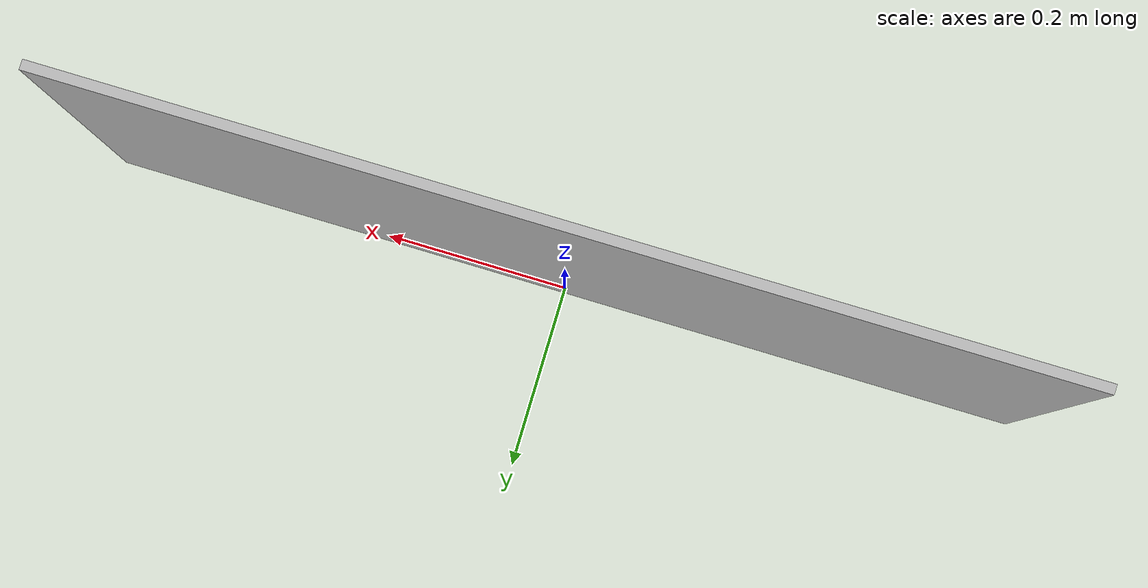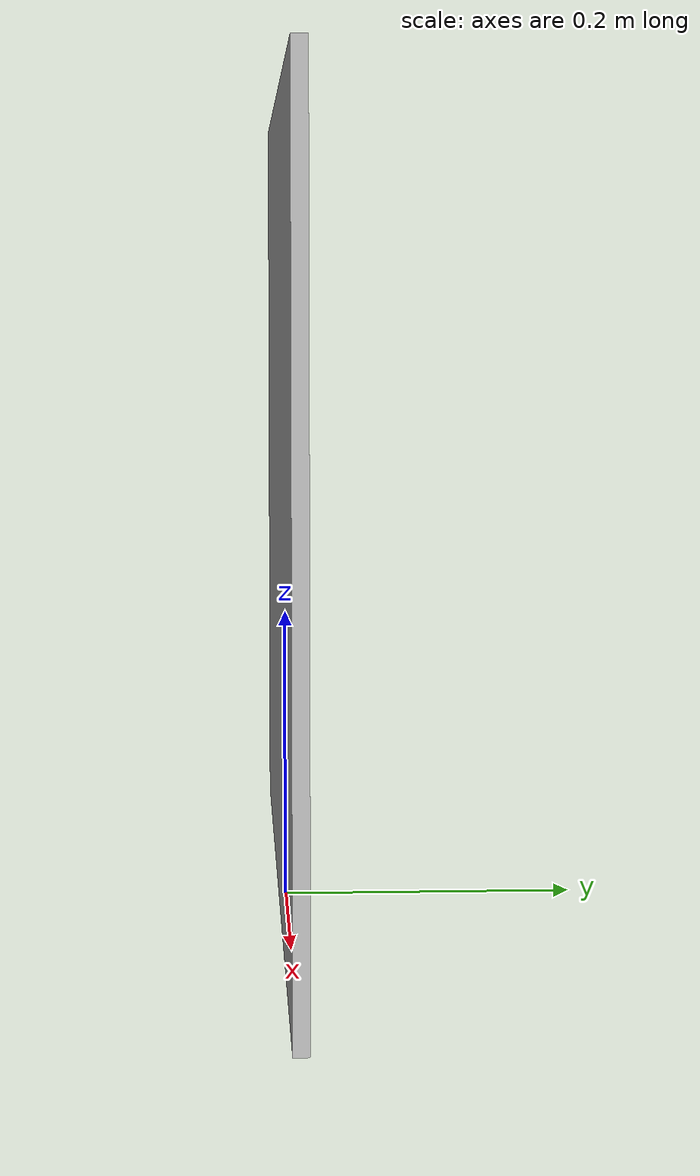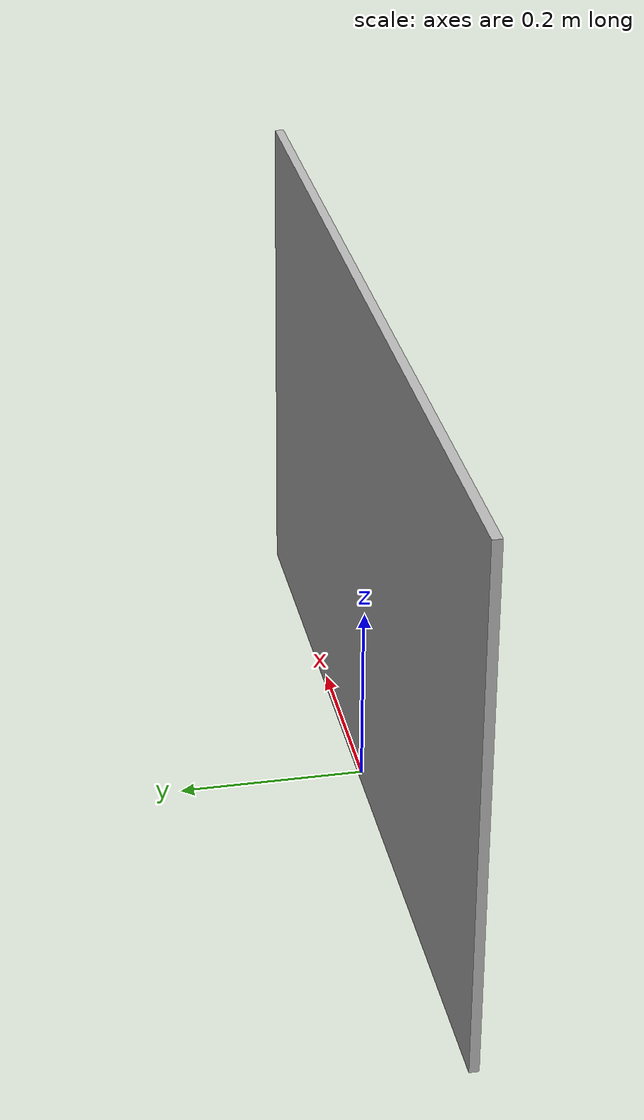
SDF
<?xml version='1.0'?>
<sdf version='1.6'>
<model name='slide-14'>
  <static>1</static>
  <link name='link'>
    <pose frame=''>0 0 0.28125 0 -0 0</pose>
    <collision name='collision'>
      <geometry>
        <box>
          <size>1 0.01 0.5625</size>
        </box>
      </geometry>
    </collision>
    <visual name='visual'>
      <geometry>
        <box>
          <size>1 0.01 0.5625</size>
        </box>
      </geometry>
      <material>
        <script>
          <uri>model://slide-14/materials/scripts</uri>
          <uri>model://slide-14/materials/textures</uri>
          <name>Slides/slide_14</name>
        </script>
      </material>
    </visual>
  </link>
</model>
</sdf>
